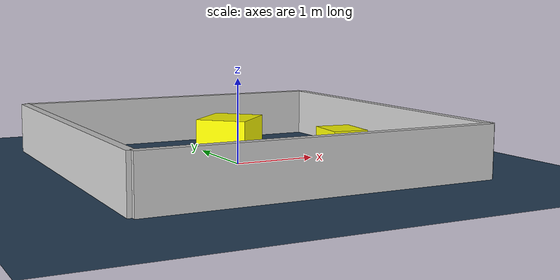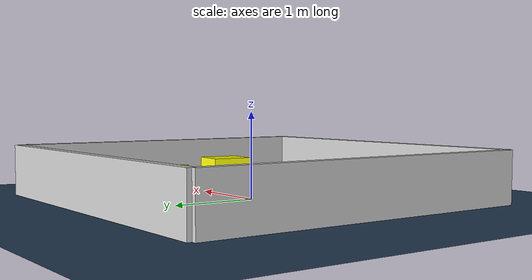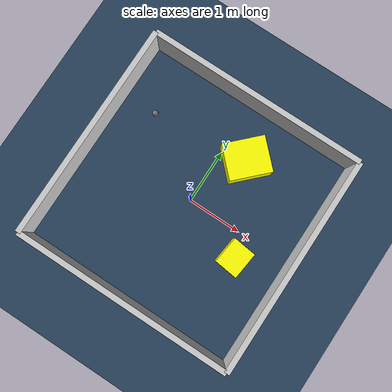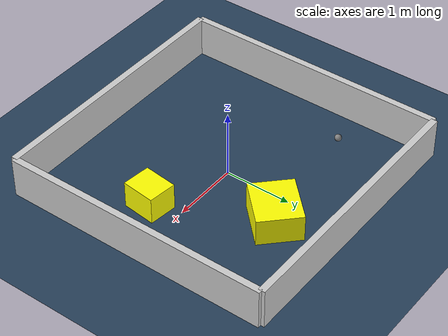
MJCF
<?xml version="1.0" ?>
<mujoco model="generated_environment">
  <option timestep="0.01" integrator="RK4" cone="elliptic"/>
  <default>
    <geom density="1"/>
  </default>
  <asset>
    <texture builtin="gradient" height="3072" rgb1="0.3 0.5 0.7" rgb2="0 0 0" type="skybox" width="512"/>
    <texture builtin="checker" height="300" mark="edge" markrgb="0.8 0.8 0.8" name="groundplane" rgb1="0.2 0.3 0.4" rgb2="0.1 0.2 0.3" type="2d" width="300"/>
    <material name="groundplane" reflectance="0.2" texrepeat="5 5" texture="groundplane" texuniform="true"/>
    <material name="robot" rgba="0.0 1.0 0.0 1"/>
  </asset>
  <worldbody>
    <light dir="0 0 -1" directional="true" pos="0 0 1.5"/>
    <geom condim="4" friction="1.0 0.005 0.001" material="groundplane" name="floor" size="0 0 0.05" type="plane"/>
    <body name="walls">
      <geom name="wall_1" condim="4" pos="-2.0 0.0 0.3" rgba="0.800000011920929 0.800000011920929 0.800000011920929 1.0" size="0.05 2.0 0.3" type="box"/>
      <geom name="wall_2" condim="4" pos="2.0 0.0 0.3" rgba="0.800000011920929 0.800000011920929 0.800000011920929 1.0" size="0.05 2.0 0.3" type="box"/>
      <geom name="wall_3" condim="4" pos="0.0 -2.0 0.3" rgba="0.800000011920929 0.800000011920929 0.800000011920929 1.0" size="2.0 0.05 0.3" type="box"/>
      <geom name="wall_4" condim="4" pos="0.0 2.0 0.3" rgba="0.800000011920929 0.800000011920929 0.800000011920929 1.0" size="2.0 0.05 0.3" type="box"/>
    </body>
    <body name="robot">
      <joint name="joint_x" type="slide" pos="0 0 0" axis="1 0 0"/>
      <joint name="joint_y" type="slide" pos="0 0 0" axis="0 1 0"/>
      <geom name="robot" type="sphere" pos="-1.3183076156293305 0.9142864114821605 0.2" size="0.05" mass="5." friction="1.0 0.005 0.0001" condim="4"/>
      <site name="sensor_ball"/>
    </body>
    <body name="obstacle_1_movable">
      <geom name="obstacle_1_movable" condim="4" pos="1.1576242303842192 -0.4142275190087803 0.2" euler="0 0 173.3184013466772" friction="1.0 0.005 0.001" rgba="1 1 0 1" size="0.21095572150426203 0.2491038021660601 0.2" type="box" mass="0.1"/>
      <joint type="free"/>
    </body>
    <body name="obstacle_2_movable">
      <geom name="obstacle_2_movable" condim="4" pos="0.42292101220394795 1.0895618022072135 0.2" euler="0 0 225.33782730261171" friction="1.0 0.005 0.001" rgba="1 1 0 1" size="0.3741738352205417 0.3217186364528766 0.2" type="box" mass="0.1"/>
      <joint type="free"/>
    </body>
  </worldbody>
  <actuator>
    <motor name="actuator_x" joint="joint_x" gear="1" ctrlrange="-1 1"/>
    <motor name="actuator_y" joint="joint_y" gear="1" ctrlrange="-1 1"/>
  </actuator>
</mujoco>
